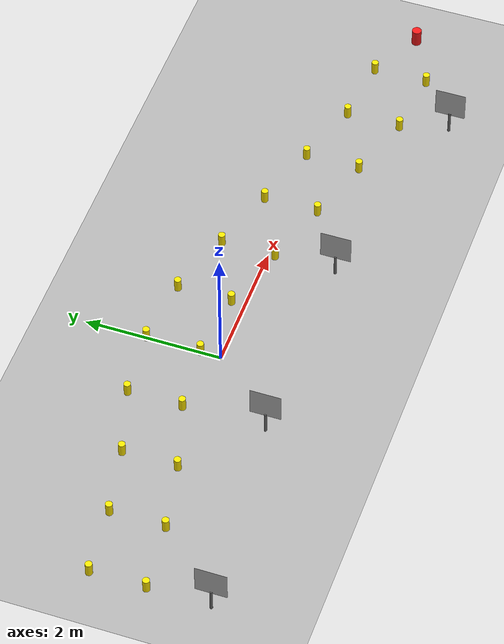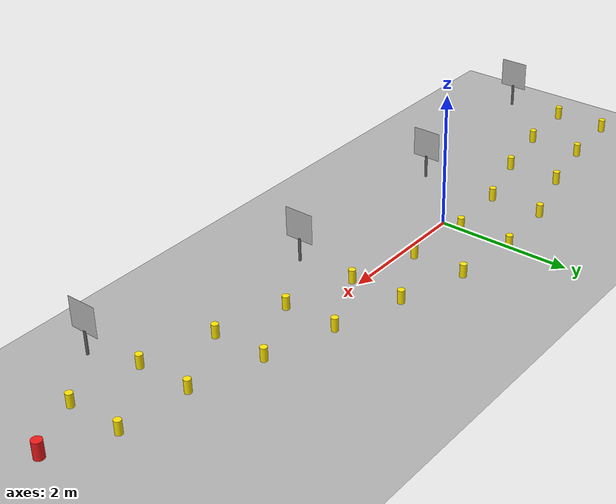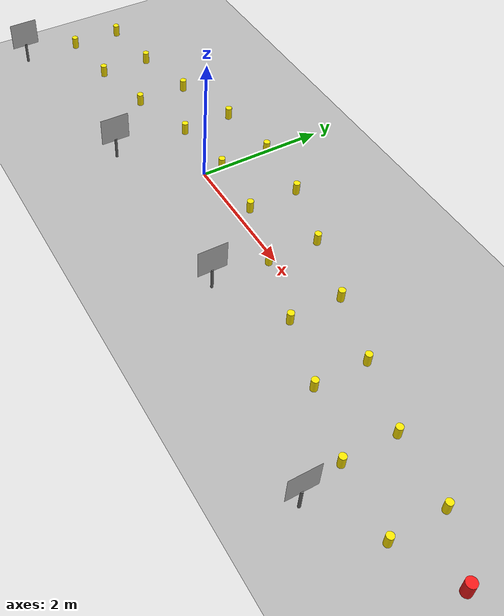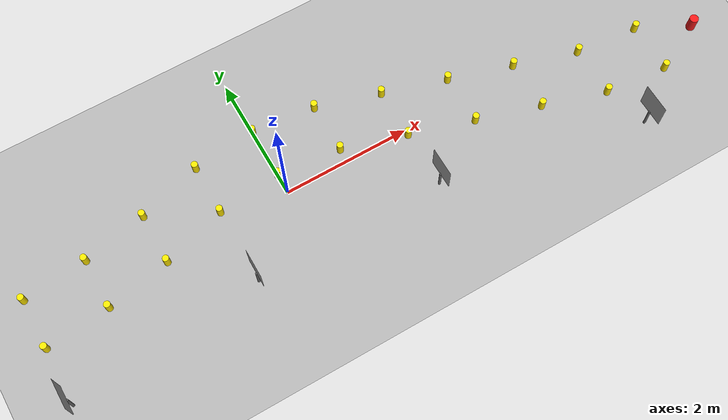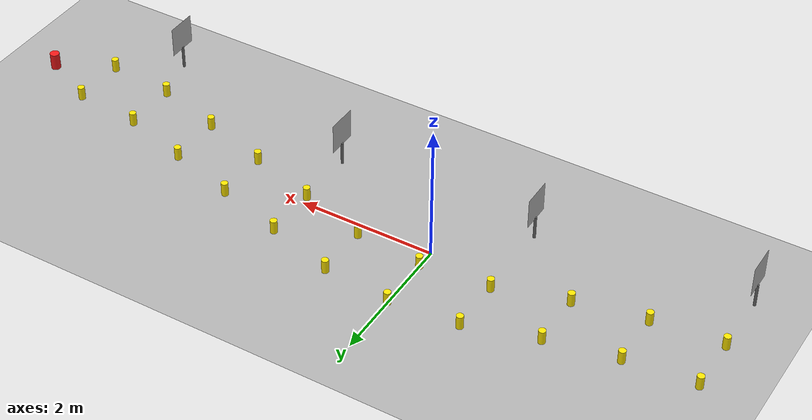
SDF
<?xml version="1.0"?>
<sdf version="1.7">
  <world name="cone_lane">

    <physics type="ode">
      <max_step_size>0.004</max_step_size>
      <real_time_factor>1.0</real_time_factor>
    </physics>

    <plugin filename="libignition-gazebo-physics-system.so"
      name="ignition::gazebo::systems::Physics" />
    <plugin filename="libignition-gazebo-user-commands-system.so"
      name="ignition::gazebo::systems::UserCommands" />
    <plugin filename="libignition-gazebo-scene-broadcaster-system.so"
      name="ignition::gazebo::systems::SceneBroadcaster" />
    <plugin filename="libignition-gazebo-sensors-system.so"
      name="ignition::gazebo::systems::Sensors">
      <render_engine>ogre2</render_engine>
    </plugin>
    <plugin filename="libignition-gazebo-imu-system.so"
      name="ignition::gazebo::systems::Imu" />

    <!-- Scene-level ambient fill — prevents fully-black shadows -->
    <scene>
      <ambient>0.4 0.4 0.4 1</ambient>
      <background>0.25 0.25 0.25 1</background>
      <shadows>true</shadows>
    </scene>

    <!-- Directional sun -->
    <light type="directional" name="sun">
      <cast_shadows>true</cast_shadows>
      <pose>0 0 10 0 0 0</pose>
      <diffuse>0.9 0.9 0.9 1</diffuse>
      <specular>0.3 0.3 0.3 1</specular>
      <attenuation>
        <range>1000</range>
        <constant>0.9</constant>
        <linear>0.01</linear>
        <quadratic>0.001</quadratic>
      </attenuation>
      <direction>-0.5 0.1 -0.9</direction>
    </light>

    <!-- Ground plane — light concrete grey -->
    <model name="ground_plane">
      <static>true</static>
      <link name="link">
        <collision name="collision">
          <geometry>
            <plane>
              <normal>0 0 1</normal>
              <size>150 150</size>
            </plane>
          </geometry>
          <surface>
            <friction>
              <ode>
                <mu>1.0</mu>
              </ode>
            </friction>
          </surface>
        </collision>
        <visual name="visual">
          <geometry>
            <plane>
              <normal>0 0 1</normal>
              <size>100 100</size>
            </plane>
          </geometry>
          <material>
            <ambient>0.55 0.55 0.55 1</ambient>
            <diffuse>0.70 0.70 0.70 1</diffuse>
            <specular>0.05 0.05 0.05 1</specular>
          </material>
        </visual>
      </link>
    </model>

    <!-- Left yellow cone row -->
    <model name="cone_L1">
      <static>true</static>
      <pose>-4.0 0.4 0.1 0 0 0</pose>
      <link name="link">
        <visual name="v">
          <geometry>
            <cylinder>
              <radius>0.05</radius>
              <length>0.2</length>
            </cylinder>
          </geometry>
          <material>
            <ambient>0.9 0.8 0.0 1</ambient>
            <diffuse>1.0 0.9 0.0 1</diffuse>
            <specular>0.2 0.2 0.0 1</specular>
          </material>
        </visual>
        <collision name="c">
          <geometry>
            <cylinder>
              <radius>0.05</radius>
              <length>0.2</length>
            </cylinder>
          </geometry>
        </collision>
      </link>
    </model>

    <model name="cone_L2">
      <static>true</static>
      <pose>-3.0 0.5 0.1 0 0 0</pose>
      <link name="link">
        <visual name="v">
          <geometry>
            <cylinder>
              <radius>0.05</radius>
              <length>0.2</length>
            </cylinder>
          </geometry>
          <material>
            <ambient>0.9 0.8 0.0 1</ambient>
            <diffuse>1.0 0.9 0.0 1</diffuse>
            <specular>0.2 0.2 0.0 1</specular>
          </material>
        </visual>
        <collision name="c">
          <geometry>
            <cylinder>
              <radius>0.05</radius>
              <length>0.2</length>
            </cylinder>
          </geometry>
        </collision>
      </link>
    </model>

    <model name="cone_L3">
      <static>true</static>
      <pose>-2.0 0.7 0.1 0 0 0</pose>
      <link name="link">
        <visual name="v">
          <geometry>
            <cylinder>
              <radius>0.05</radius>
              <length>0.2</length>
            </cylinder>
          </geometry>
          <material>
            <ambient>0.9 0.8 0.0 1</ambient>
            <diffuse>1.0 0.9 0.0 1</diffuse>
            <specular>0.2 0.2 0.0 1</specular>
          </material>
        </visual>
        <collision name="c">
          <geometry>
            <cylinder>
              <radius>0.05</radius>
              <length>0.2</length>
            </cylinder>
          </geometry>
        </collision>
      </link>
    </model>

    <model name="cone_L4">
      <static>true</static>
      <pose>-1.0 1.0 0.1 0 0 0</pose>
      <link name="link">
        <visual name="v">
          <geometry>
            <cylinder>
              <radius>0.05</radius>
              <length>0.2</length>
            </cylinder>
          </geometry>
          <material>
            <ambient>0.9 0.8 0.0 1</ambient>
            <diffuse>1.0 0.9 0.0 1</diffuse>
            <specular>0.2 0.2 0.0 1</specular>
          </material>
        </visual>
        <collision name="c">
          <geometry>
            <cylinder>
              <radius>0.05</radius>
              <length>0.2</length>
            </cylinder>
          </geometry>
        </collision>
      </link>
    </model>

    <!-- Right yellow cone row -->
    <model name="cone_R1">
      <static>true</static>
      <pose>-4.0 -0.4 0.1 0 0 0</pose>
      <link name="link">
        <visual name="v">
          <geometry>
            <cylinder>
              <radius>0.05</radius>
              <length>0.2</length>
            </cylinder>
          </geometry>
          <material>
            <ambient>0.9 0.8 0.0 1</ambient>
            <diffuse>1.0 0.9 0.0 1</diffuse>
            <specular>0.2 0.2 0.0 1</specular>
          </material>
        </visual>
        <collision name="c">
          <geometry>
            <cylinder>
              <radius>0.05</radius>
              <length>0.2</length>
            </cylinder>
          </geometry>
        </collision>
      </link>
    </model>

    <model name="cone_R2">
      <static>true</static>
      <pose>-3.0 -0.3 0.1 0 0 0</pose>
      <link name="link">
        <visual name="v">
          <geometry>
            <cylinder>
              <radius>0.05</radius>
              <length>0.2</length>
            </cylinder>
          </geometry>
          <material>
            <ambient>0.9 0.8 0.0 1</ambient>
            <diffuse>1.0 0.9 0.0 1</diffuse>
            <specular>0.2 0.2 0.0 1</specular>
          </material>
        </visual>
        <collision name="c">
          <geometry>
            <cylinder>
              <radius>0.05</radius>
              <length>0.2</length>
            </cylinder>
          </geometry>
        </collision>
      </link>
    </model>

    <model name="cone_R3">
      <static>true</static>
      <pose>-2.0 -0.1 0.1 0 0 0</pose>
      <link name="link">
        <visual name="v">
          <geometry>
            <cylinder>
              <radius>0.05</radius>
              <length>0.2</length>
            </cylinder>
          </geometry>
          <material>
            <ambient>0.9 0.8 0.0 1</ambient>
            <diffuse>1.0 0.9 0.0 1</diffuse>
            <specular>0.2 0.2 0.0 1</specular>
          </material>
        </visual>
        <collision name="c">
          <geometry>
            <cylinder>
              <radius>0.05</radius>
              <length>0.2</length>
            </cylinder>
          </geometry>
        </collision>
      </link>
    </model>

    <model name="cone_R4">
      <static>true</static>
      <pose>-1.0 0.2 0.1 0 0 0</pose>
      <link name="link">
        <visual name="v">
          <geometry>
            <cylinder>
              <radius>0.05</radius>
              <length>0.2</length>
            </cylinder>
          </geometry>
          <material>
            <ambient>0.9 0.8 0.0 1</ambient>
            <diffuse>1.0 0.9 0.0 1</diffuse>
            <specular>0.2 0.2 0.0 1</specular>
          </material>
        </visual>
        <collision name="c">
          <geometry>
            <cylinder>
              <radius>0.05</radius>
              <length>0.2</length>
            </cylinder>
          </geometry>
        </collision>
      </link>
    </model>

    <model name="cone_L5">
      <static>true</static>
      <pose>0.0 1.1 0.1 0 0 0</pose>
      <link name="link">
        <visual name="v">
          <geometry>
            <cylinder>
              <radius>0.05</radius>
              <length>0.2</length>
            </cylinder>
          </geometry>
          <material>
            <ambient>0.9 0.8 0.0 1</ambient>
            <diffuse>1.0 0.9 0.0 1</diffuse>
            <specular>0.2 0.2 0.0 1</specular>
          </material>
        </visual>
        <collision name="c">
          <geometry>
            <cylinder>
              <radius>0.05</radius>
              <length>0.2</length>
            </cylinder>
          </geometry>
        </collision>
      </link>
    </model>

    <model name="cone_R5">
      <static>true</static>
      <pose>0.0 0.3 0.1 0 0 0</pose>
      <link name="link">
        <visual name="v">
          <geometry>
            <cylinder>
              <radius>0.05</radius>
              <length>0.2</length>
            </cylinder>
          </geometry>
          <material>
            <ambient>0.9 0.8 0.0 1</ambient>
            <diffuse>1.0 0.9 0.0 1</diffuse>
            <specular>0.2 0.2 0.0 1</specular>
          </material>
        </visual>
        <collision name="c">
          <geometry>
            <cylinder>
              <radius>0.05</radius>
              <length>0.2</length>
            </cylinder>
          </geometry>
        </collision>
      </link>
    </model>

    <model name="cone_L6">
      <static>true</static>
      <pose>1.0 1.0 0.1 0 0 0</pose>
      <link name="link">
        <visual name="v">
          <geometry>
            <cylinder>
              <radius>0.05</radius>
              <length>0.2</length>
            </cylinder>
          </geometry>
          <material>
            <ambient>0.9 0.8 0.0 1</ambient>
            <diffuse>1.0 0.9 0.0 1</diffuse>
            <specular>0.2 0.2 0.0 1</specular>
          </material>
        </visual>
        <collision name="c">
          <geometry>
            <cylinder>
              <radius>0.05</radius>
              <length>0.2</length>
            </cylinder>
          </geometry>
        </collision>
      </link>
    </model>

    <model name="cone_R6">
      <static>true</static>
      <pose>1.0 0.2 0.1 0 0 0</pose>
      <link name="link">
        <visual name="v">
          <geometry>
            <cylinder>
              <radius>0.05</radius>
              <length>0.2</length>
            </cylinder>
          </geometry>
          <material>
            <ambient>0.9 0.8 0.0 1</ambient>
            <diffuse>1.0 0.9 0.0 1</diffuse>
            <specular>0.2 0.2 0.0 1</specular>
          </material>
        </visual>
        <collision name="c">
          <geometry>
            <cylinder>
              <radius>0.05</radius>
              <length>0.2</length>
            </cylinder>
          </geometry>
        </collision>
      </link>
    </model>

    <model name="cone_L7">
      <static>true</static>
      <pose>2.0 0.7 0.1 0 0 0</pose>
      <link name="link">
        <visual name="v">
          <geometry>
            <cylinder>
              <radius>0.05</radius>
              <length>0.2</length>
            </cylinder>
          </geometry>
          <material>
            <ambient>0.9 0.8 0.0 1</ambient>
            <diffuse>1.0 0.9 0.0 1</diffuse>
            <specular>0.2 0.2 0.0 1</specular>
          </material>
        </visual>
        <collision name="c">
          <geometry>
            <cylinder>
              <radius>0.05</radius>
              <length>0.2</length>
            </cylinder>
          </geometry>
        </collision>
      </link>
    </model>

    <model name="cone_R7">
      <static>true</static>
      <pose>2.0 -0.1 0.1 0 0 0</pose>
      <link name="link">
        <visual name="v">
          <geometry>
            <cylinder>
              <radius>0.05</radius>
              <length>0.2</length>
            </cylinder>
          </geometry>
          <material>
            <ambient>0.9 0.8 0.0 1</ambient>
            <diffuse>1.0 0.9 0.0 1</diffuse>
            <specular>0.2 0.2 0.0 1</specular>
          </material>
        </visual>
        <collision name="c">
          <geometry>
            <cylinder>
              <radius>0.05</radius>
              <length>0.2</length>
            </cylinder>
          </geometry>
        </collision>
      </link>
    </model>

    <model name="cone_L8">
      <static>true</static>
      <pose>3.0 0.4 0.1 0 0 0</pose>
      <link name="link">
        <visual name="v">
          <geometry>
            <cylinder>
              <radius>0.05</radius>
              <length>0.2</length>
            </cylinder>
          </geometry>
          <material>
            <ambient>0.9 0.8 0.0 1</ambient>
            <diffuse>1.0 0.9 0.0 1</diffuse>
            <specular>0.2 0.2 0.0 1</specular>
          </material>
        </visual>
        <collision name="c">
          <geometry>
            <cylinder>
              <radius>0.05</radius>
              <length>0.2</length>
            </cylinder>
          </geometry>
        </collision>
      </link>
    </model>

    <model name="cone_R8">
      <static>true</static>
      <pose>3.0 -0.4 0.1 0 0 0</pose>
      <link name="link">
        <visual name="v">
          <geometry>
            <cylinder>
              <radius>0.05</radius>
              <length>0.2</length>
            </cylinder>
          </geometry>
          <material>
            <ambient>0.9 0.8 0.0 1</ambient>
            <diffuse>1.0 0.9 0.0 1</diffuse>
            <specular>0.2 0.2 0.0 1</specular>
          </material>
        </visual>
        <collision name="c">
          <geometry>
            <cylinder>
              <radius>0.05</radius>
              <length>0.2</length>
            </cylinder>
          </geometry>
        </collision>
      </link>
    </model>

    <model name="cone_L9">
      <static>true</static>
      <pose>4.0 0.1 0.1 0 0 0</pose>
      <link name="link">
        <visual name="v">
          <geometry>
            <cylinder>
              <radius>0.05</radius>
              <length>0.2</length>
            </cylinder>
          </geometry>
          <material>
            <ambient>0.9 0.8 0.0 1</ambient>
            <diffuse>1.0 0.9 0.0 1</diffuse>
            <specular>0.2 0.2 0.0 1</specular>
          </material>
        </visual>
        <collision name="c">
          <geometry>
            <cylinder>
              <radius>0.05</radius>
              <length>0.2</length>
            </cylinder>
          </geometry>
        </collision>
      </link>
    </model>

    <model name="cone_R9">
      <static>true</static>
      <pose>4.0 -0.7 0.1 0 0 0</pose>
      <link name="link">
        <visual name="v">
          <geometry>
            <cylinder>
              <radius>0.05</radius>
              <length>0.2</length>
            </cylinder>
          </geometry>
          <material>
            <ambient>0.9 0.8 0.0 1</ambient>
            <diffuse>1.0 0.9 0.0 1</diffuse>
            <specular>0.2 0.2 0.0 1</specular>
          </material>
        </visual>
        <collision name="c">
          <geometry>
            <cylinder>
              <radius>0.05</radius>
              <length>0.2</length>
            </cylinder>
          </geometry>
        </collision>
      </link>
    </model>

    <model name="cone_L10">
      <static>true</static>
      <pose>5.0 -0.2 0.1 0 0 0</pose>
      <link name="link">
        <visual name="v">
          <geometry>
            <cylinder>
              <radius>0.05</radius>
              <length>0.2</length>
            </cylinder>
          </geometry>
          <material>
            <ambient>0.9 0.8 0.0 1</ambient>
            <diffuse>1.0 0.9 0.0 1</diffuse>
            <specular>0.2 0.2 0.0 1</specular>
          </material>
        </visual>
        <collision name="c">
          <geometry>
            <cylinder>
              <radius>0.05</radius>
              <length>0.2</length>
            </cylinder>
          </geometry>
        </collision>
      </link>
    </model>

    <model name="cone_R10">
      <static>true</static>
      <pose>5.0 -1.0 0.1 0 0 0</pose>
      <link name="link">
        <visual name="v">
          <geometry>
            <cylinder>
              <radius>0.05</radius>
              <length>0.2</length>
            </cylinder>
          </geometry>
          <material>
            <ambient>0.9 0.8 0.0 1</ambient>
            <diffuse>1.0 0.9 0.0 1</diffuse>
            <specular>0.2 0.2 0.0 1</specular>
          </material>
        </visual>
        <collision name="c">
          <geometry>
            <cylinder>
              <radius>0.05</radius>
              <length>0.2</length>
            </cylinder>
          </geometry>
        </collision>
      </link>
    </model>

    <model name="cone_L11">
      <static>true</static>
      <pose>6.0 -0.3 0.1 0 0 0</pose>
      <link name="link">
        <visual name="v">
          <geometry>
            <cylinder>
              <radius>0.05</radius>
              <length>0.2</length>
            </cylinder>
          </geometry>
          <material>
            <ambient>0.9 0.8 0.0 1</ambient>
            <diffuse>1.0 0.9 0.0 1</diffuse>
            <specular>0.2 0.2 0.0 1</specular>
          </material>
        </visual>
        <collision name="c">
          <geometry>
            <cylinder>
              <radius>0.05</radius>
              <length>0.2</length>
            </cylinder>
          </geometry>
        </collision>
      </link>
    </model>

    <model name="cone_R11">
      <static>true</static>
      <pose>6.0 -1.1 0.1 0 0 0</pose>
      <link name="link">
        <visual name="v">
          <geometry>
            <cylinder>
              <radius>0.05</radius>
              <length>0.2</length>
            </cylinder>
          </geometry>
          <material>
            <ambient>0.9 0.8 0.0 1</ambient>
            <diffuse>1.0 0.9 0.0 1</diffuse>
            <specular>0.2 0.2 0.0 1</specular>
          </material>
        </visual>
        <collision name="c">
          <geometry>
            <cylinder>
              <radius>0.05</radius>
              <length>0.2</length>
            </cylinder>
          </geometry>
        </collision>
      </link>
    </model>

    <!-- Red goal cone — on the centerline just past the S, at the trough end. -->
    <model name="cone_goal">
      <static>true</static>
      <pose>6.8 -0.7 0.125 0 0 0</pose>
      <link name="link">
        <visual name="v">
          <geometry>
            <cylinder>
              <radius>0.07</radius>
              <length>0.25</length>
            </cylinder>
          </geometry>
          <material>
            <ambient>0.8 0.05 0.05 1</ambient>
            <diffuse>0.95 0.1 0.1 1</diffuse>
            <specular>0.3 0.05 0.05 1</specular>
          </material>
        </visual>
        <collision name="c">
          <geometry>
            <cylinder>
              <radius>0.07</radius>
              <length>0.25</length>
            </cylinder>
          </geometry>
        </collision>
      </link>
    </model>

    <!-- Left-curve warning: at the start, before the lane arcs left. -->
    <include>
      <name>sign_left</name>
      <uri>model://sign_left</uri>
      <pose>-4.0 -1.3 0 0 0 3.14159</pose>
    </include>

    <!-- Winding-road (S-curve) warning: just before the crest/reversal. -->
    <include>
      <name>sign_winding</name>
      <uri>model://sign_winding</uri>
      <pose>-1.0 -1.0 0 0 0 3.14159</pose>
    </include>

    <!-- Right-curve warning: after the crest, where the lane swings right. -->
    <include>
      <name>sign_right</name>
      <uri>model://sign_right</uri>
      <pose>2.0 -1.0 0 0 0 3.14159</pose>
    </include>

    <!-- Stop: ahead of the red goal cone (goal at 6.8,-0.7). -->
    <include>
      <name>sign_stop</name>
      <uri>model://sign_stop</uri>
      <pose>5.2 -1.7 0 0 0 3.14159</pose>
    </include>

  </world>
</sdf>

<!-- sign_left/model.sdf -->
<sdf version="1.7">
  <model name="sign_left">
    <static>true</static>
    <link name="link">

      <!-- Support post -->
      <visual name="post">
        <pose>0 0 0.175 0 0 0</pose>
        <geometry>
          <cylinder>
            <radius>0.02</radius>
            <length>0.35</length>
          </cylinder>
        </geometry>
        <material>
          <ambient>0.3 0.3 0.3 1</ambient>
          <diffuse>0.4 0.4 0.4 1</diffuse>
        </material>
      </visual>

      <visual name="board_face">
        <pose>0 0 0.55 0 0 0</pose>
        <geometry>
          <mesh>
            <uri>model://sign_left/meshes/sign.obj</uri>
          </mesh>
        </geometry>
      </visual>

      <collision name="board_col">
        <pose>0 0 0.55 0 0 0</pose>
        <geometry>
          <box>
            <size>0.02 0.45 0.45</size>
          </box>
        </geometry>
      </collision>

    </link>
  </model>
</sdf>

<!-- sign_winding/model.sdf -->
<sdf version="1.7">
  <model name="sign_winding">
    <static>true</static>
    <link name="link">

      <!-- Support post -->
      <visual name="post">
        <pose>0 0 0.175 0 0 0</pose>
        <geometry>
          <cylinder>
            <radius>0.02</radius>
            <length>0.35</length>
          </cylinder>
        </geometry>
        <material>
          <ambient>0.3 0.3 0.3 1</ambient>
          <diffuse>0.4 0.4 0.4 1</diffuse>
        </material>
      </visual>

      <visual name="board_face">
        <pose>0 0 0.55 0 0 0</pose>
        <geometry>
          <mesh>
            <uri>model://sign_winding/meshes/sign.obj</uri>
          </mesh>
        </geometry>
      </visual>

      <collision name="board_col">
        <pose>0 0 0.55 0 0 0</pose>
        <geometry>
          <box>
            <size>0.02 0.45 0.45</size>
          </box>
        </geometry>
      </collision>

    </link>
  </model>
</sdf>

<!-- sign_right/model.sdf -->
<sdf version="1.7">
  <model name="sign_right">
    <static>true</static>
    <link name="link">

      <!-- Support post -->
      <visual name="post">
        <pose>0 0 0.175 0 0 0</pose>
        <geometry>
          <cylinder>
            <radius>0.02</radius>
            <length>0.35</length>
          </cylinder>
        </geometry>
        <material>
          <ambient>0.3 0.3 0.3 1</ambient>
          <diffuse>0.4 0.4 0.4 1</diffuse>
        </material>
      </visual>

      <visual name="board_face">
        <pose>0 0 0.55 0 0 0</pose>
        <geometry>
          <mesh>
            <uri>model://sign_right/meshes/sign.obj</uri>
          </mesh>
        </geometry>
      </visual>

      <collision name="board_col">
        <pose>0 0 0.55 0 0 0</pose>
        <geometry>
          <box>
            <size>0.02 0.45 0.45</size>
          </box>
        </geometry>
      </collision>

    </link>
  </model>
</sdf>

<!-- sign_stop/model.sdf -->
<sdf version="1.7">
  <model name="sign_stop">
    <static>true</static>
    <link name="link">

      <!-- Support post -->
      <visual name="post">
        <pose>0 0 0.175 0 0 0</pose>
        <geometry>
          <cylinder>
            <radius>0.02</radius>
            <length>0.35</length>
          </cylinder>
        </geometry>
        <material>
          <ambient>0.3 0.3 0.3 1</ambient>
          <diffuse>0.4 0.4 0.4 1</diffuse>
        </material>
      </visual>

      <visual name="board_face">
        <pose>0 0 0.55 0 0 0</pose>
        <geometry>
          <mesh>
            <uri>model://sign_stop/meshes/sign.obj</uri>
          </mesh>
        </geometry>
      </visual>

      <collision name="board_col">
        <pose>0 0 0.55 0 0 0</pose>
        <geometry>
          <box>
            <size>0.02 0.45 0.45</size>
          </box>
        </geometry>
      </collision>

    </link>
  </model>
</sdf>
